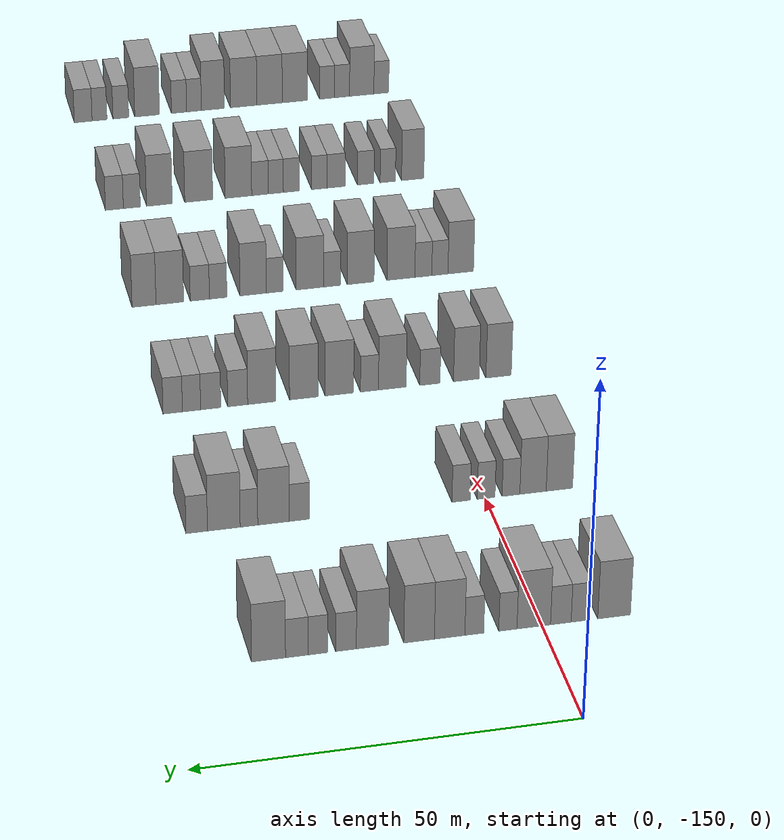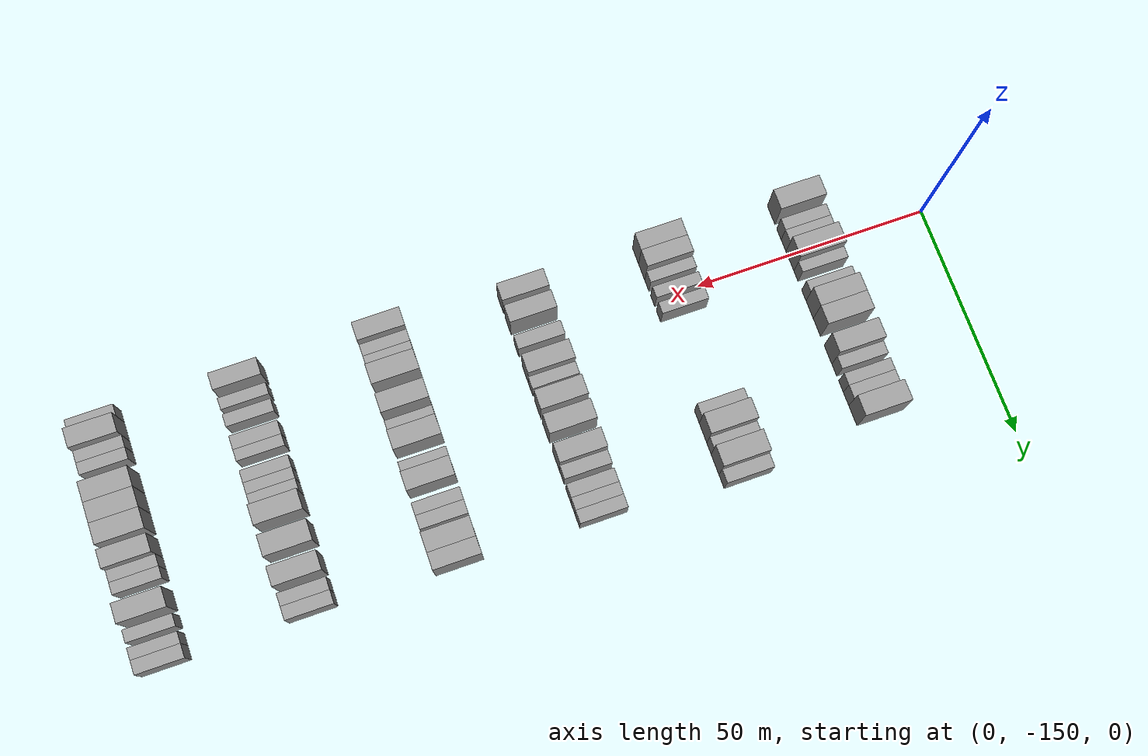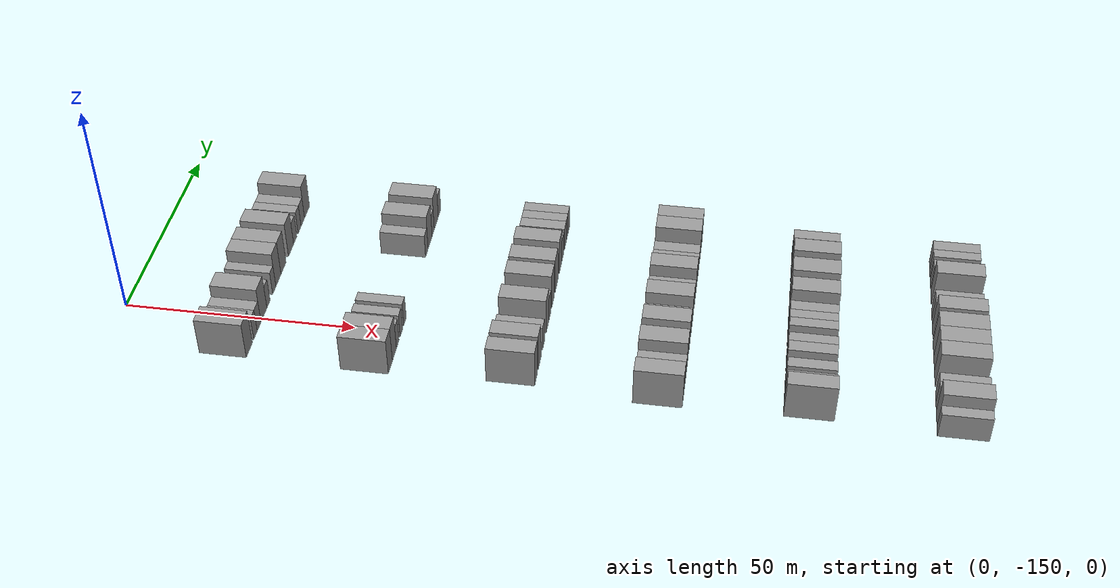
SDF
<sdf version="1.6">
 <world name="default">
  <model name="building_68">
   <static>1</static>
   <pose>25.0000 -159.6716 0 0.000000 0.000000 0.000000</pose>
   <link name="link">
    <pose>0 0 4.50 0 0 0</pose>
    <collision name="collision"><geometry><box><size>10.0000 4.3974 9.0000</size></box></geometry></collision>
    <visual name="visual">
     <cast_shadows>0</cast_shadows>
     <geometry><box><size>10.0000 4.3974 9.0000</size></box></geometry>
     <material>
      <script>
       <uri>model://grey_wall/materials/scripts</uri>
       <uri>model://grey_wall/materials/textures</uri>
       <name>vrc/grey_wall</name>
      </script>
     </material>
    </visual>
   </link>
  </model>
  <model name="building_69">
   <static>1</static>
   <pose>25.0000 -155.1851 0 0.000000 0.000000 0.000000</pose>
   <link name="link">
    <pose>0 0 3.00 0 0 0</pose>
    <collision name="collision"><geometry><box><size>10.0000 2.5757 6.0000</size></box></geometry></collision>
    <visual name="visual">
     <cast_shadows>0</cast_shadows>
     <geometry><box><size>10.0000 2.5757 6.0000</size></box></geometry>
     <material>
      <script>
       <uri>model://grey_wall/materials/scripts</uri>
       <uri>model://grey_wall/materials/textures</uri>
       <name>vrc/grey_wall</name>
      </script>
     </material>
    </visual>
   </link>
  </model>
  <model name="building_70">
   <static>1</static>
   <pose>25.0000 -152.5151 0 0.000000 0.000000 0.000000</pose>
   <link name="link">
    <pose>0 0 3.00 0 0 0</pose>
    <collision name="collision"><geometry><box><size>10.0000 2.7643 6.0000</size></box></geometry></collision>
    <visual name="visual">
     <cast_shadows>0</cast_shadows>
     <geometry><box><size>10.0000 2.7643 6.0000</size></box></geometry>
     <material>
      <script>
       <uri>model://grey_wall/materials/scripts</uri>
       <uri>model://grey_wall/materials/textures</uri>
       <name>vrc/grey_wall</name>
      </script>
     </material>
    </visual>
   </link>
  </model>
  <model name="building_71">
   <static>1</static>
   <pose>25.0000 -148.8898 0 0.000000 0.000000 0.000000</pose>
   <link name="link">
    <pose>0 0 4.50 0 0 0</pose>
    <collision name="collision"><geometry><box><size>10.0000 4.4863 9.0000</size></box></geometry></collision>
    <visual name="visual">
     <cast_shadows>0</cast_shadows>
     <geometry><box><size>10.0000 4.4863 9.0000</size></box></geometry>
     <material>
      <script>
       <uri>model://grey_wall/materials/scripts</uri>
       <uri>model://grey_wall/materials/textures</uri>
       <name>vrc/grey_wall</name>
      </script>
     </material>
    </visual>
   </link>
  </model>
  <model name="building_72">
   <static>1</static>
   <pose>25.0000 -145.4337 0 0.000000 0.000000 0.000000</pose>
   <link name="link">
    <pose>0 0 3.00 0 0 0</pose>
    <collision name="collision"><geometry><box><size>10.0000 2.4259 6.0000</size></box></geometry></collision>
    <visual name="visual">
     <cast_shadows>0</cast_shadows>
     <geometry><box><size>10.0000 2.4259 6.0000</size></box></geometry>
     <material>
      <script>
       <uri>model://grey_wall/materials/scripts</uri>
       <uri>model://grey_wall/materials/textures</uri>
       <name>vrc/grey_wall</name>
      </script>
     </material>
    </visual>
   </link>
  </model>
  <model name="building_73">
   <static>1</static>
   <pose>25.0000 -140.9664 0 0.000000 0.000000 0.000000</pose>
   <link name="link">
    <pose>0 0 3.00 0 0 0</pose>
    <collision name="collision"><geometry><box><size>10.0000 2.5087 6.0000</size></box></geometry></collision>
    <visual name="visual">
     <cast_shadows>0</cast_shadows>
     <geometry><box><size>10.0000 2.5087 6.0000</size></box></geometry>
     <material>
      <script>
       <uri>model://grey_wall/materials/scripts</uri>
       <uri>model://grey_wall/materials/textures</uri>
       <name>vrc/grey_wall</name>
      </script>
     </material>
    </visual>
   </link>
  </model>
  <model name="building_74">
   <static>1</static>
   <pose>25.0000 -137.6919 0 0.000000 0.000000 0.000000</pose>
   <link name="link">
    <pose>0 0 4.50 0 0 0</pose>
    <collision name="collision"><geometry><box><size>10.0000 4.0403 9.0000</size></box></geometry></collision>
    <visual name="visual">
     <cast_shadows>0</cast_shadows>
     <geometry><box><size>10.0000 4.0403 9.0000</size></box></geometry>
     <material>
      <script>
       <uri>model://grey_wall/materials/scripts</uri>
       <uri>model://grey_wall/materials/textures</uri>
       <name>vrc/grey_wall</name>
      </script>
     </material>
    </visual>
   </link>
  </model>
  <model name="building_75">
   <static>1</static>
   <pose>25.0000 -133.6516 0 0.000000 0.000000 0.000000</pose>
   <link name="link">
    <pose>0 0 4.50 0 0 0</pose>
    <collision name="collision"><geometry><box><size>10.0000 4.0403 9.0000</size></box></geometry></collision>
    <visual name="visual">
     <cast_shadows>0</cast_shadows>
     <geometry><box><size>10.0000 4.0403 9.0000</size></box></geometry>
     <material>
      <script>
       <uri>model://grey_wall/materials/scripts</uri>
       <uri>model://grey_wall/materials/textures</uri>
       <name>vrc/grey_wall</name>
      </script>
     </material>
    </visual>
   </link>
  </model>
  <model name="building_76">
   <static>1</static>
   <pose>25.0000 -127.5075 0 0.000000 0.000000 0.000000</pose>
   <link name="link">
    <pose>0 0 4.50 0 0 0</pose>
    <collision name="collision"><geometry><box><size>10.0000 4.2479 9.0000</size></box></geometry></collision>
    <visual name="visual">
     <cast_shadows>0</cast_shadows>
     <geometry><box><size>10.0000 4.2479 9.0000</size></box></geometry>
     <material>
      <script>
       <uri>model://grey_wall/materials/scripts</uri>
       <uri>model://grey_wall/materials/textures</uri>
       <name>vrc/grey_wall</name>
      </script>
     </material>
    </visual>
   </link>
  </model>
  <model name="building_77">
   <static>1</static>
   <pose>25.0000 -124.0210 0 0.000000 0.000000 0.000000</pose>
   <link name="link">
    <pose>0 0 3.00 0 0 0</pose>
    <collision name="collision"><geometry><box><size>10.0000 2.7253 6.0000</size></box></geometry></collision>
    <visual name="visual">
     <cast_shadows>0</cast_shadows>
     <geometry><box><size>10.0000 2.7253 6.0000</size></box></geometry>
     <material>
      <script>
       <uri>model://grey_wall/materials/scripts</uri>
       <uri>model://grey_wall/materials/textures</uri>
       <name>vrc/grey_wall</name>
      </script>
     </material>
    </visual>
   </link>
  </model>
  <model name="building_78">
   <static>1</static>
   <pose>25.0000 -120.3752 0 0.000000 0.000000 0.000000</pose>
   <link name="link">
    <pose>0 0 3.00 0 0 0</pose>
    <collision name="collision"><geometry><box><size>10.0000 2.5663 6.0000</size></box></geometry></collision>
    <visual name="visual">
     <cast_shadows>0</cast_shadows>
     <geometry><box><size>10.0000 2.5663 6.0000</size></box></geometry>
     <material>
      <script>
       <uri>model://grey_wall/materials/scripts</uri>
       <uri>model://grey_wall/materials/textures</uri>
       <name>vrc/grey_wall</name>
      </script>
     </material>
    </visual>
   </link>
  </model>
  <model name="building_79">
   <static>1</static>
   <pose>25.0000 -117.6062 0 0.000000 0.000000 0.000000</pose>
   <link name="link">
    <pose>0 0 3.00 0 0 0</pose>
    <collision name="collision"><geometry><box><size>10.0000 2.9716 6.0000</size></box></geometry></collision>
    <visual name="visual">
     <cast_shadows>0</cast_shadows>
     <geometry><box><size>10.0000 2.9716 6.0000</size></box></geometry>
     <material>
      <script>
       <uri>model://grey_wall/materials/scripts</uri>
       <uri>model://grey_wall/materials/textures</uri>
       <name>vrc/grey_wall</name>
      </script>
     </material>
    </visual>
   </link>
  </model>
  <model name="building_80">
   <static>1</static>
   <pose>25.0000 -113.9055 0 0.000000 0.000000 0.000000</pose>
   <link name="link">
    <pose>0 0 4.50 0 0 0</pose>
    <collision name="collision"><geometry><box><size>10.0000 4.4298 9.0000</size></box></geometry></collision>
    <visual name="visual">
     <cast_shadows>0</cast_shadows>
     <geometry><box><size>10.0000 4.4298 9.0000</size></box></geometry>
     <material>
      <script>
       <uri>model://grey_wall/materials/scripts</uri>
       <uri>model://grey_wall/materials/textures</uri>
       <name>vrc/grey_wall</name>
      </script>
     </material>
    </visual>
   </link>
  </model>
  <model name="building_297">
   <static>1</static>
   <pose>55.0000 -160.4701 0 0.000000 0.000000 0.000000</pose>
   <link name="link">
    <pose>0 0 4.50 0 0 0</pose>
    <collision name="collision"><geometry><box><size>10.0000 3.7425 9.0000</size></box></geometry></collision>
    <visual name="visual">
     <cast_shadows>0</cast_shadows>
     <geometry><box><size>10.0000 3.7425 9.0000</size></box></geometry>
     <material>
      <script>
       <uri>model://grey_wall/materials/scripts</uri>
       <uri>model://grey_wall/materials/textures</uri>
       <name>vrc/grey_wall</name>
      </script>
     </material>
    </visual>
   </link>
  </model>
  <model name="building_298">
   <static>1</static>
   <pose>55.0000 -156.7333 0 0.000000 0.000000 0.000000</pose>
   <link name="link">
    <pose>0 0 4.50 0 0 0</pose>
    <collision name="collision"><geometry><box><size>10.0000 3.7312 9.0000</size></box></geometry></collision>
    <visual name="visual">
     <cast_shadows>0</cast_shadows>
     <geometry><box><size>10.0000 3.7312 9.0000</size></box></geometry>
     <material>
      <script>
       <uri>model://grey_wall/materials/scripts</uri>
       <uri>model://grey_wall/materials/textures</uri>
       <name>vrc/grey_wall</name>
      </script>
     </material>
    </visual>
   </link>
  </model>
  <model name="building_299">
   <static>1</static>
   <pose>55.0000 -153.6113 0 0.000000 0.000000 0.000000</pose>
   <link name="link">
    <pose>0 0 3.00 0 0 0</pose>
    <collision name="collision"><geometry><box><size>10.0000 2.5127 6.0000</size></box></geometry></collision>
    <visual name="visual">
     <cast_shadows>0</cast_shadows>
     <geometry><box><size>10.0000 2.5127 6.0000</size></box></geometry>
     <material>
      <script>
       <uri>model://grey_wall/materials/scripts</uri>
       <uri>model://grey_wall/materials/textures</uri>
       <name>vrc/grey_wall</name>
      </script>
     </material>
    </visual>
   </link>
  </model>
  <model name="building_300">
   <static>1</static>
   <pose>55.0000 -150.1097 0 0.000000 0.000000 0.000000</pose>
   <link name="link">
    <pose>0 0 3.00 0 0 0</pose>
    <collision name="collision"><geometry><box><size>10.0000 2.4907 6.0000</size></box></geometry></collision>
    <visual name="visual">
     <cast_shadows>0</cast_shadows>
     <geometry><box><size>10.0000 2.4907 6.0000</size></box></geometry>
     <material>
      <script>
       <uri>model://grey_wall/materials/scripts</uri>
       <uri>model://grey_wall/materials/textures</uri>
       <name>vrc/grey_wall</name>
      </script>
     </material>
    </visual>
   </link>
  </model>
  <model name="building_301">
   <static>1</static>
   <pose>55.0000 -146.5846 0 0.000000 0.000000 0.000000</pose>
   <link name="link">
    <pose>0 0 3.00 0 0 0</pose>
    <collision name="collision"><geometry><box><size>10.0000 2.5594 6.0000</size></box></geometry></collision>
    <visual name="visual">
     <cast_shadows>0</cast_shadows>
     <geometry><box><size>10.0000 2.5594 6.0000</size></box></geometry>
     <material>
      <script>
       <uri>model://grey_wall/materials/scripts</uri>
       <uri>model://grey_wall/materials/textures</uri>
       <name>vrc/grey_wall</name>
      </script>
     </material>
    </visual>
   </link>
  </model>
  <model name="building_302">
   <static>1</static>
   <pose>55.0000 -124.0738 0 0.000000 0.000000 0.000000</pose>
   <link name="link">
    <pose>0 0 3.00 0 0 0</pose>
    <collision name="collision"><geometry><box><size>10.0000 2.8207 6.0000</size></box></geometry></collision>
    <visual name="visual">
     <cast_shadows>0</cast_shadows>
     <geometry><box><size>10.0000 2.8207 6.0000</size></box></geometry>
     <material>
      <script>
       <uri>model://grey_wall/materials/scripts</uri>
       <uri>model://grey_wall/materials/textures</uri>
       <name>vrc/grey_wall</name>
      </script>
     </material>
    </visual>
   </link>
  </model>
  <model name="building_303">
   <static>1</static>
   <pose>55.0000 -120.4865 0 0.000000 0.000000 0.000000</pose>
   <link name="link">
    <pose>0 0 4.50 0 0 0</pose>
    <collision name="collision"><geometry><box><size>10.0000 4.3540 9.0000</size></box></geometry></collision>
    <visual name="visual">
     <cast_shadows>0</cast_shadows>
     <geometry><box><size>10.0000 4.3540 9.0000</size></box></geometry>
     <material>
      <script>
       <uri>model://grey_wall/materials/scripts</uri>
       <uri>model://grey_wall/materials/textures</uri>
       <name>vrc/grey_wall</name>
      </script>
     </material>
    </visual>
   </link>
  </model>
  <model name="building_304">
   <static>1</static>
   <pose>55.0000 -117.0992 0 0.000000 0.000000 0.000000</pose>
   <link name="link">
    <pose>0 0 3.00 0 0 0</pose>
    <collision name="collision"><geometry><box><size>10.0000 2.4206 6.0000</size></box></geometry></collision>
    <visual name="visual">
     <cast_shadows>0</cast_shadows>
     <geometry><box><size>10.0000 2.4206 6.0000</size></box></geometry>
     <material>
      <script>
       <uri>model://grey_wall/materials/scripts</uri>
       <uri>model://grey_wall/materials/textures</uri>
       <name>vrc/grey_wall</name>
      </script>
     </material>
    </visual>
   </link>
  </model>
  <model name="building_305">
   <static>1</static>
   <pose>55.0000 -113.6443 0 0.000000 0.000000 0.000000</pose>
   <link name="link">
    <pose>0 0 4.50 0 0 0</pose>
    <collision name="collision"><geometry><box><size>10.0000 4.4891 9.0000</size></box></geometry></collision>
    <visual name="visual">
     <cast_shadows>0</cast_shadows>
     <geometry><box><size>10.0000 4.4891 9.0000</size></box></geometry>
     <material>
      <script>
       <uri>model://grey_wall/materials/scripts</uri>
       <uri>model://grey_wall/materials/textures</uri>
       <name>vrc/grey_wall</name>
      </script>
     </material>
    </visual>
   </link>
  </model>
  <model name="building_306">
   <static>1</static>
   <pose>55.0000 -109.9319 0 0.000000 0.000000 0.000000</pose>
   <link name="link">
    <pose>0 0 3.00 0 0 0</pose>
    <collision name="collision"><geometry><box><size>10.0000 2.9357 6.0000</size></box></geometry></collision>
    <visual name="visual">
     <cast_shadows>0</cast_shadows>
     <geometry><box><size>10.0000 2.9357 6.0000</size></box></geometry>
     <material>
      <script>
       <uri>model://grey_wall/materials/scripts</uri>
       <uri>model://grey_wall/materials/textures</uri>
       <name>vrc/grey_wall</name>
      </script>
     </material>
    </visual>
   </link>
  </model>
  <model name="building_530">
   <static>1</static>
   <pose>85.0000 -159.5327 0 0.000000 0.000000 0.000000</pose>
   <link name="link">
    <pose>0 0 4.50 0 0 0</pose>
    <collision name="collision"><geometry><box><size>10.0000 3.7682 9.0000</size></box></geometry></collision>
    <visual name="visual">
     <cast_shadows>0</cast_shadows>
     <geometry><box><size>10.0000 3.7682 9.0000</size></box></geometry>
     <material>
      <script>
       <uri>model://grey_wall/materials/scripts</uri>
       <uri>model://grey_wall/materials/textures</uri>
       <name>vrc/grey_wall</name>
      </script>
     </material>
    </visual>
   </link>
  </model>
  <model name="building_531">
   <static>1</static>
   <pose>85.0000 -154.7418 0 0.000000 0.000000 0.000000</pose>
   <link name="link">
    <pose>0 0 4.50 0 0 0</pose>
    <collision name="collision"><geometry><box><size>10.0000 3.8137 9.0000</size></box></geometry></collision>
    <visual name="visual">
     <cast_shadows>0</cast_shadows>
     <geometry><box><size>10.0000 3.8137 9.0000</size></box></geometry>
     <material>
      <script>
       <uri>model://grey_wall/materials/scripts</uri>
       <uri>model://grey_wall/materials/textures</uri>
       <name>vrc/grey_wall</name>
      </script>
     </material>
    </visual>
   </link>
  </model>
  <model name="building_532">
   <static>1</static>
   <pose>85.0000 -149.3360 0 0.000000 0.000000 0.000000</pose>
   <link name="link">
    <pose>0 0 3.00 0 0 0</pose>
    <collision name="collision"><geometry><box><size>10.0000 2.9979 6.0000</size></box></geometry></collision>
    <visual name="visual">
     <cast_shadows>0</cast_shadows>
     <geometry><box><size>10.0000 2.9979 6.0000</size></box></geometry>
     <material>
      <script>
       <uri>model://grey_wall/materials/scripts</uri>
       <uri>model://grey_wall/materials/textures</uri>
       <name>vrc/grey_wall</name>
      </script>
     </material>
    </visual>
   </link>
  </model>
  <model name="building_533">
   <static>1</static>
   <pose>85.0000 -143.7953 0 0.000000 0.000000 0.000000</pose>
   <link name="link">
    <pose>0 0 4.50 0 0 0</pose>
    <collision name="collision"><geometry><box><size>10.0000 4.0837 9.0000</size></box></geometry></collision>
    <visual name="visual">
     <cast_shadows>0</cast_shadows>
     <geometry><box><size>10.0000 4.0837 9.0000</size></box></geometry>
     <material>
      <script>
       <uri>model://grey_wall/materials/scripts</uri>
       <uri>model://grey_wall/materials/textures</uri>
       <name>vrc/grey_wall</name>
      </script>
     </material>
    </visual>
   </link>
  </model>
  <model name="building_534">
   <static>1</static>
   <pose>85.0000 -140.4273 0 0.000000 0.000000 0.000000</pose>
   <link name="link">
    <pose>0 0 3.00 0 0 0</pose>
    <collision name="collision"><geometry><box><size>10.0000 2.6522 6.0000</size></box></geometry></collision>
    <visual name="visual">
     <cast_shadows>0</cast_shadows>
     <geometry><box><size>10.0000 2.6522 6.0000</size></box></geometry>
     <material>
      <script>
       <uri>model://grey_wall/materials/scripts</uri>
       <uri>model://grey_wall/materials/textures</uri>
       <name>vrc/grey_wall</name>
      </script>
     </material>
    </visual>
   </link>
  </model>
  <model name="building_535">
   <static>1</static>
   <pose>85.0000 -136.0098 0 0.000000 0.000000 0.000000</pose>
   <link name="link">
    <pose>0 0 4.50 0 0 0</pose>
    <collision name="collision"><geometry><box><size>10.0000 4.1829 9.0000</size></box></geometry></collision>
    <visual name="visual">
     <cast_shadows>0</cast_shadows>
     <geometry><box><size>10.0000 4.1829 9.0000</size></box></geometry>
     <material>
      <script>
       <uri>model://grey_wall/materials/scripts</uri>
       <uri>model://grey_wall/materials/textures</uri>
       <name>vrc/grey_wall</name>
      </script>
     </material>
    </visual>
   </link>
  </model>
  <model name="building_536">
   <static>1</static>
   <pose>85.0000 -130.8243 0 0.000000 0.000000 0.000000</pose>
   <link name="link">
    <pose>0 0 4.50 0 0 0</pose>
    <collision name="collision"><geometry><box><size>10.0000 4.1880 9.0000</size></box></geometry></collision>
    <visual name="visual">
     <cast_shadows>0</cast_shadows>
     <geometry><box><size>10.0000 4.1880 9.0000</size></box></geometry>
     <material>
      <script>
       <uri>model://grey_wall/materials/scripts</uri>
       <uri>model://grey_wall/materials/textures</uri>
       <name>vrc/grey_wall</name>
      </script>
     </material>
    </visual>
   </link>
  </model>
  <model name="building_537">
   <static>1</static>
   <pose>85.0000 -124.6805 0 0.000000 0.000000 0.000000</pose>
   <link name="link">
    <pose>0 0 4.50 0 0 0</pose>
    <collision name="collision"><geometry><box><size>10.0000 4.0997 9.0000</size></box></geometry></collision>
    <visual name="visual">
     <cast_shadows>0</cast_shadows>
     <geometry><box><size>10.0000 4.0997 9.0000</size></box></geometry>
     <material>
      <script>
       <uri>model://grey_wall/materials/scripts</uri>
       <uri>model://grey_wall/materials/textures</uri>
       <name>vrc/grey_wall</name>
      </script>
     </material>
    </visual>
   </link>
  </model>
  <model name="building_538">
   <static>1</static>
   <pose>85.0000 -121.1832 0 0.000000 0.000000 0.000000</pose>
   <link name="link">
    <pose>0 0 3.00 0 0 0</pose>
    <collision name="collision"><geometry><box><size>10.0000 2.8948 6.0000</size></box></geometry></collision>
    <visual name="visual">
     <cast_shadows>0</cast_shadows>
     <geometry><box><size>10.0000 2.8948 6.0000</size></box></geometry>
     <material>
      <script>
       <uri>model://grey_wall/materials/scripts</uri>
       <uri>model://grey_wall/materials/textures</uri>
       <name>vrc/grey_wall</name>
      </script>
     </material>
    </visual>
   </link>
  </model>
  <model name="building_539">
   <static>1</static>
   <pose>85.0000 -117.2781 0 0.000000 0.000000 0.000000</pose>
   <link name="link">
    <pose>0 0 3.00 0 0 0</pose>
    <collision name="collision"><geometry><box><size>10.0000 2.9156 6.0000</size></box></geometry></collision>
    <visual name="visual">
     <cast_shadows>0</cast_shadows>
     <geometry><box><size>10.0000 2.9156 6.0000</size></box></geometry>
     <material>
      <script>
       <uri>model://grey_wall/materials/scripts</uri>
       <uri>model://grey_wall/materials/textures</uri>
       <name>vrc/grey_wall</name>
      </script>
     </material>
    </visual>
   </link>
  </model>
  <model name="building_540">
   <static>1</static>
   <pose>85.0000 -114.5073 0 0.000000 0.000000 0.000000</pose>
   <link name="link">
    <pose>0 0 3.00 0 0 0</pose>
    <collision name="collision"><geometry><box><size>10.0000 2.6259 6.0000</size></box></geometry></collision>
    <visual name="visual">
     <cast_shadows>0</cast_shadows>
     <geometry><box><size>10.0000 2.6259 6.0000</size></box></geometry>
     <material>
      <script>
       <uri>model://grey_wall/materials/scripts</uri>
       <uri>model://grey_wall/materials/textures</uri>
       <name>vrc/grey_wall</name>
      </script>
     </material>
    </visual>
   </link>
  </model>
  <model name="building_541">
   <static>1</static>
   <pose>85.0000 -111.7978 0 0.000000 0.000000 0.000000</pose>
   <link name="link">
    <pose>0 0 3.00 0 0 0</pose>
    <collision name="collision"><geometry><box><size>10.0000 2.7933 6.0000</size></box></geometry></collision>
    <visual name="visual">
     <cast_shadows>0</cast_shadows>
     <geometry><box><size>10.0000 2.7933 6.0000</size></box></geometry>
     <material>
      <script>
       <uri>model://grey_wall/materials/scripts</uri>
       <uri>model://grey_wall/materials/textures</uri>
       <name>vrc/grey_wall</name>
      </script>
     </material>
    </visual>
   </link>
  </model>
  <model name="building_744">
   <static>1</static>
   <pose>115.0000 -161.2777 0 0.000000 0.000000 0.000000</pose>
   <link name="link">
    <pose>0 0 4.50 0 0 0</pose>
    <collision name="collision"><geometry><box><size>10.0000 3.9788 9.0000</size></box></geometry></collision>
    <visual name="visual">
     <cast_shadows>0</cast_shadows>
     <geometry><box><size>10.0000 3.9788 9.0000</size></box></geometry>
     <material>
      <script>
       <uri>model://grey_wall/materials/scripts</uri>
       <uri>model://grey_wall/materials/textures</uri>
       <name>vrc/grey_wall</name>
      </script>
     </material>
    </visual>
   </link>
  </model>
  <model name="building_745">
   <static>1</static>
   <pose>115.0000 -158.0272 0 0.000000 0.000000 0.000000</pose>
   <link name="link">
    <pose>0 0 3.00 0 0 0</pose>
    <collision name="collision"><geometry><box><size>10.0000 2.5222 6.0000</size></box></geometry></collision>
    <visual name="visual">
     <cast_shadows>0</cast_shadows>
     <geometry><box><size>10.0000 2.5222 6.0000</size></box></geometry>
     <material>
      <script>
       <uri>model://grey_wall/materials/scripts</uri>
       <uri>model://grey_wall/materials/textures</uri>
       <name>vrc/grey_wall</name>
      </script>
     </material>
    </visual>
   </link>
  </model>
  <model name="building_746">
   <static>1</static>
   <pose>115.0000 -155.4476 0 0.000000 0.000000 0.000000</pose>
   <link name="link">
    <pose>0 0 3.00 0 0 0</pose>
    <collision name="collision"><geometry><box><size>10.0000 2.6370 6.0000</size></box></geometry></collision>
    <visual name="visual">
     <cast_shadows>0</cast_shadows>
     <geometry><box><size>10.0000 2.6370 6.0000</size></box></geometry>
     <material>
      <script>
       <uri>model://grey_wall/materials/scripts</uri>
       <uri>model://grey_wall/materials/textures</uri>
       <name>vrc/grey_wall</name>
      </script>
     </material>
    </visual>
   </link>
  </model>
  <model name="building_747">
   <static>1</static>
   <pose>115.0000 -151.9599 0 0.000000 0.000000 0.000000</pose>
   <link name="link">
    <pose>0 0 4.50 0 0 0</pose>
    <collision name="collision"><geometry><box><size>10.0000 4.3385 9.0000</size></box></geometry></collision>
    <visual name="visual">
     <cast_shadows>0</cast_shadows>
     <geometry><box><size>10.0000 4.3385 9.0000</size></box></geometry>
     <material>
      <script>
       <uri>model://grey_wall/materials/scripts</uri>
       <uri>model://grey_wall/materials/textures</uri>
       <name>vrc/grey_wall</name>
      </script>
     </material>
    </visual>
   </link>
  </model>
  <model name="building_748">
   <static>1</static>
   <pose>115.0000 -145.7211 0 0.000000 0.000000 0.000000</pose>
   <link name="link">
    <pose>0 0 4.50 0 0 0</pose>
    <collision name="collision"><geometry><box><size>10.0000 4.1390 9.0000</size></box></geometry></collision>
    <visual name="visual">
     <cast_shadows>0</cast_shadows>
     <geometry><box><size>10.0000 4.1390 9.0000</size></box></geometry>
     <material>
      <script>
       <uri>model://grey_wall/materials/scripts</uri>
       <uri>model://grey_wall/materials/textures</uri>
       <name>vrc/grey_wall</name>
      </script>
     </material>
    </visual>
   </link>
  </model>
  <model name="building_749">
   <static>1</static>
   <pose>115.0000 -141.3209 0 0.000000 0.000000 0.000000</pose>
   <link name="link">
    <pose>0 0 3.00 0 0 0</pose>
    <collision name="collision"><geometry><box><size>10.0000 2.6614 6.0000</size></box></geometry></collision>
    <visual name="visual">
     <cast_shadows>0</cast_shadows>
     <geometry><box><size>10.0000 2.6614 6.0000</size></box></geometry>
     <material>
      <script>
       <uri>model://grey_wall/materials/scripts</uri>
       <uri>model://grey_wall/materials/textures</uri>
       <name>vrc/grey_wall</name>
      </script>
     </material>
    </visual>
   </link>
  </model>
  <model name="building_750">
   <static>1</static>
   <pose>115.0000 -137.8860 0 0.000000 0.000000 0.000000</pose>
   <link name="link">
    <pose>0 0 4.50 0 0 0</pose>
    <collision name="collision"><geometry><box><size>10.0000 4.2084 9.0000</size></box></geometry></collision>
    <visual name="visual">
     <cast_shadows>0</cast_shadows>
     <geometry><box><size>10.0000 4.2084 9.0000</size></box></geometry>
     <material>
      <script>
       <uri>model://grey_wall/materials/scripts</uri>
       <uri>model://grey_wall/materials/textures</uri>
       <name>vrc/grey_wall</name>
      </script>
     </material>
    </visual>
   </link>
  </model>
  <model name="building_751">
   <static>1</static>
   <pose>115.0000 -132.4882 0 0.000000 0.000000 0.000000</pose>
   <link name="link">
    <pose>0 0 3.00 0 0 0</pose>
    <collision name="collision"><geometry><box><size>10.0000 2.5872 6.0000</size></box></geometry></collision>
    <visual name="visual">
     <cast_shadows>0</cast_shadows>
     <geometry><box><size>10.0000 2.5872 6.0000</size></box></geometry>
     <material>
      <script>
       <uri>model://grey_wall/materials/scripts</uri>
       <uri>model://grey_wall/materials/textures</uri>
       <name>vrc/grey_wall</name>
      </script>
     </material>
    </visual>
   </link>
  </model>
  <model name="building_752">
   <static>1</static>
   <pose>115.0000 -129.1830 0 0.000000 0.000000 0.000000</pose>
   <link name="link">
    <pose>0 0 4.50 0 0 0</pose>
    <collision name="collision"><geometry><box><size>10.0000 4.0232 9.0000</size></box></geometry></collision>
    <visual name="visual">
     <cast_shadows>0</cast_shadows>
     <geometry><box><size>10.0000 4.0232 9.0000</size></box></geometry>
     <material>
      <script>
       <uri>model://grey_wall/materials/scripts</uri>
       <uri>model://grey_wall/materials/textures</uri>
       <name>vrc/grey_wall</name>
      </script>
     </material>
    </visual>
   </link>
  </model>
  <model name="building_753">
   <static>1</static>
   <pose>115.0000 -123.8432 0 0.000000 0.000000 0.000000</pose>
   <link name="link">
    <pose>0 0 3.00 0 0 0</pose>
    <collision name="collision"><geometry><box><size>10.0000 2.6564 6.0000</size></box></geometry></collision>
    <visual name="visual">
     <cast_shadows>0</cast_shadows>
     <geometry><box><size>10.0000 2.6564 6.0000</size></box></geometry>
     <material>
      <script>
       <uri>model://grey_wall/materials/scripts</uri>
       <uri>model://grey_wall/materials/textures</uri>
       <name>vrc/grey_wall</name>
      </script>
     </material>
    </visual>
   </link>
  </model>
  <model name="building_754">
   <static>1</static>
   <pose>115.0000 -121.0573 0 0.000000 0.000000 0.000000</pose>
   <link name="link">
    <pose>0 0 3.00 0 0 0</pose>
    <collision name="collision"><geometry><box><size>10.0000 2.9155 6.0000</size></box></geometry></collision>
    <visual name="visual">
     <cast_shadows>0</cast_shadows>
     <geometry><box><size>10.0000 2.9155 6.0000</size></box></geometry>
     <material>
      <script>
       <uri>model://grey_wall/materials/scripts</uri>
       <uri>model://grey_wall/materials/textures</uri>
       <name>vrc/grey_wall</name>
      </script>
     </material>
    </visual>
   </link>
  </model>
  <model name="building_755">
   <static>1</static>
   <pose>115.0000 -116.5032 0 0.000000 0.000000 0.000000</pose>
   <link name="link">
    <pose>0 0 4.50 0 0 0</pose>
    <collision name="collision"><geometry><box><size>10.0000 4.1927 9.0000</size></box></geometry></collision>
    <visual name="visual">
     <cast_shadows>0</cast_shadows>
     <geometry><box><size>10.0000 4.1927 9.0000</size></box></geometry>
     <material>
      <script>
       <uri>model://grey_wall/materials/scripts</uri>
       <uri>model://grey_wall/materials/textures</uri>
       <name>vrc/grey_wall</name>
      </script>
     </material>
    </visual>
   </link>
  </model>
  <model name="building_756">
   <static>1</static>
   <pose>115.0000 -112.5969 0 0.000000 0.000000 0.000000</pose>
   <link name="link">
    <pose>0 0 4.50 0 0 0</pose>
    <collision name="collision"><geometry><box><size>10.0000 3.6198 9.0000</size></box></geometry></collision>
    <visual name="visual">
     <cast_shadows>0</cast_shadows>
     <geometry><box><size>10.0000 3.6198 9.0000</size></box></geometry>
     <material>
      <script>
       <uri>model://grey_wall/materials/scripts</uri>
       <uri>model://grey_wall/materials/textures</uri>
       <name>vrc/grey_wall</name>
      </script>
     </material>
    </visual>
   </link>
  </model>
  <model name="building_966">
   <static>1</static>
   <pose>145.0000 -160.7909 0 0.000000 0.000000 0.000000</pose>
   <link name="link">
    <pose>0 0 4.50 0 0 0</pose>
    <collision name="collision"><geometry><box><size>10.0000 3.6329 9.0000</size></box></geometry></collision>
    <visual name="visual">
     <cast_shadows>0</cast_shadows>
     <geometry><box><size>10.0000 3.6329 9.0000</size></box></geometry>
     <material>
      <script>
       <uri>model://grey_wall/materials/scripts</uri>
       <uri>model://grey_wall/materials/textures</uri>
       <name>vrc/grey_wall</name>
      </script>
     </material>
    </visual>
   </link>
  </model>
  <model name="building_967">
   <static>1</static>
   <pose>145.0000 -156.7232 0 0.000000 0.000000 0.000000</pose>
   <link name="link">
    <pose>0 0 3.00 0 0 0</pose>
    <collision name="collision"><geometry><box><size>10.0000 2.5025 6.0000</size></box></geometry></collision>
    <visual name="visual">
     <cast_shadows>0</cast_shadows>
     <geometry><box><size>10.0000 2.5025 6.0000</size></box></geometry>
     <material>
      <script>
       <uri>model://grey_wall/materials/scripts</uri>
       <uri>model://grey_wall/materials/textures</uri>
       <name>vrc/grey_wall</name>
      </script>
     </material>
    </visual>
   </link>
  </model>
  <model name="building_968">
   <static>1</static>
   <pose>145.0000 -153.1299 0 0.000000 0.000000 0.000000</pose>
   <link name="link">
    <pose>0 0 3.00 0 0 0</pose>
    <collision name="collision"><geometry><box><size>10.0000 2.6841 6.0000</size></box></geometry></collision>
    <visual name="visual">
     <cast_shadows>0</cast_shadows>
     <geometry><box><size>10.0000 2.6841 6.0000</size></box></geometry>
     <material>
      <script>
       <uri>model://grey_wall/materials/scripts</uri>
       <uri>model://grey_wall/materials/textures</uri>
       <name>vrc/grey_wall</name>
      </script>
     </material>
    </visual>
   </link>
  </model>
  <model name="building_969">
   <static>1</static>
   <pose>145.0000 -148.3282 0 0.000000 0.000000 0.000000</pose>
   <link name="link">
    <pose>0 0 3.00 0 0 0</pose>
    <collision name="collision"><geometry><box><size>10.0000 2.9192 6.0000</size></box></geometry></collision>
    <visual name="visual">
     <cast_shadows>0</cast_shadows>
     <geometry><box><size>10.0000 2.9192 6.0000</size></box></geometry>
     <material>
      <script>
       <uri>model://grey_wall/materials/scripts</uri>
       <uri>model://grey_wall/materials/textures</uri>
       <name>vrc/grey_wall</name>
      </script>
     </material>
    </visual>
   </link>
  </model>
  <model name="building_970">
   <static>1</static>
   <pose>145.0000 -145.6302 0 0.000000 0.000000 0.000000</pose>
   <link name="link">
    <pose>0 0 3.00 0 0 0</pose>
    <collision name="collision"><geometry><box><size>10.0000 2.4768 6.0000</size></box></geometry></collision>
    <visual name="visual">
     <cast_shadows>0</cast_shadows>
     <geometry><box><size>10.0000 2.4768 6.0000</size></box></geometry>
     <material>
      <script>
       <uri>model://grey_wall/materials/scripts</uri>
       <uri>model://grey_wall/materials/textures</uri>
       <name>vrc/grey_wall</name>
      </script>
     </material>
    </visual>
   </link>
  </model>
  <model name="building_971">
   <static>1</static>
   <pose>145.0000 -141.1068 0 0.000000 0.000000 0.000000</pose>
   <link name="link">
    <pose>0 0 3.00 0 0 0</pose>
    <collision name="collision"><geometry><box><size>10.0000 2.5699 6.0000</size></box></geometry></collision>
    <visual name="visual">
     <cast_shadows>0</cast_shadows>
     <geometry><box><size>10.0000 2.5699 6.0000</size></box></geometry>
     <material>
      <script>
       <uri>model://grey_wall/materials/scripts</uri>
       <uri>model://grey_wall/materials/textures</uri>
       <name>vrc/grey_wall</name>
      </script>
     </material>
    </visual>
   </link>
  </model>
  <model name="building_972">
   <static>1</static>
   <pose>145.0000 -138.6177 0 0.000000 0.000000 0.000000</pose>
   <link name="link">
    <pose>0 0 3.00 0 0 0</pose>
    <collision name="collision"><geometry><box><size>10.0000 2.4083 6.0000</size></box></geometry></collision>
    <visual name="visual">
     <cast_shadows>0</cast_shadows>
     <geometry><box><size>10.0000 2.4083 6.0000</size></box></geometry>
     <material>
      <script>
       <uri>model://grey_wall/materials/scripts</uri>
       <uri>model://grey_wall/materials/textures</uri>
       <name>vrc/grey_wall</name>
      </script>
     </material>
    </visual>
   </link>
  </model>
  <model name="building_973">
   <static>1</static>
   <pose>145.0000 -136.0646 0 0.000000 0.000000 0.000000</pose>
   <link name="link">
    <pose>0 0 3.00 0 0 0</pose>
    <collision name="collision"><geometry><box><size>10.0000 2.6978 6.0000</size></box></geometry></collision>
    <visual name="visual">
     <cast_shadows>0</cast_shadows>
     <geometry><box><size>10.0000 2.6978 6.0000</size></box></geometry>
     <material>
      <script>
       <uri>model://grey_wall/materials/scripts</uri>
       <uri>model://grey_wall/materials/textures</uri>
       <name>vrc/grey_wall</name>
      </script>
     </material>
    </visual>
   </link>
  </model>
  <model name="building_974">
   <static>1</static>
   <pose>145.0000 -132.5908 0 0.000000 0.000000 0.000000</pose>
   <link name="link">
    <pose>0 0 4.50 0 0 0</pose>
    <collision name="collision"><geometry><box><size>10.0000 4.2499 9.0000</size></box></geometry></collision>
    <visual name="visual">
     <cast_shadows>0</cast_shadows>
     <geometry><box><size>10.0000 4.2499 9.0000</size></box></geometry>
     <material>
      <script>
       <uri>model://grey_wall/materials/scripts</uri>
       <uri>model://grey_wall/materials/textures</uri>
       <name>vrc/grey_wall</name>
      </script>
     </material>
    </visual>
   </link>
  </model>
  <model name="building_975">
   <static>1</static>
   <pose>145.0000 -126.2356 0 0.000000 0.000000 0.000000</pose>
   <link name="link">
    <pose>0 0 4.50 0 0 0</pose>
    <collision name="collision"><geometry><box><size>10.0000 4.4606 9.0000</size></box></geometry></collision>
    <visual name="visual">
     <cast_shadows>0</cast_shadows>
     <geometry><box><size>10.0000 4.4606 9.0000</size></box></geometry>
     <material>
      <script>
       <uri>model://grey_wall/materials/scripts</uri>
       <uri>model://grey_wall/materials/textures</uri>
       <name>vrc/grey_wall</name>
      </script>
     </material>
    </visual>
   </link>
  </model>
  <model name="building_976">
   <static>1</static>
   <pose>145.0000 -119.9651 0 0.000000 0.000000 0.000000</pose>
   <link name="link">
    <pose>0 0 4.50 0 0 0</pose>
    <collision name="collision"><geometry><box><size>10.0000 4.0803 9.0000</size></box></geometry></collision>
    <visual name="visual">
     <cast_shadows>0</cast_shadows>
     <geometry><box><size>10.0000 4.0803 9.0000</size></box></geometry>
     <material>
      <script>
       <uri>model://grey_wall/materials/scripts</uri>
       <uri>model://grey_wall/materials/textures</uri>
       <name>vrc/grey_wall</name>
      </script>
     </material>
    </visual>
   </link>
  </model>
  <model name="building_977">
   <static>1</static>
   <pose>145.0000 -115.5844 0 0.000000 0.000000 0.000000</pose>
   <link name="link">
    <pose>0 0 3.00 0 0 0</pose>
    <collision name="collision"><geometry><box><size>10.0000 2.6810 6.0000</size></box></geometry></collision>
    <visual name="visual">
     <cast_shadows>0</cast_shadows>
     <geometry><box><size>10.0000 2.6810 6.0000</size></box></geometry>
     <material>
      <script>
       <uri>model://grey_wall/materials/scripts</uri>
       <uri>model://grey_wall/materials/textures</uri>
       <name>vrc/grey_wall</name>
      </script>
     </material>
    </visual>
   </link>
  </model>
  <model name="building_978">
   <static>1</static>
   <pose>145.0000 -112.8252 0 0.000000 0.000000 0.000000</pose>
   <link name="link">
    <pose>0 0 3.00 0 0 0</pose>
    <collision name="collision"><geometry><box><size>10.0000 2.8375 6.0000</size></box></geometry></collision>
    <visual name="visual">
     <cast_shadows>0</cast_shadows>
     <geometry><box><size>10.0000 2.8375 6.0000</size></box></geometry>
     <material>
      <script>
       <uri>model://grey_wall/materials/scripts</uri>
       <uri>model://grey_wall/materials/textures</uri>
       <name>vrc/grey_wall</name>
      </script>
     </material>
    </visual>
   </link>
  </model>
  <model name="building_1196">
   <static>1</static>
   <pose>175.0000 -162.4232 0 0.000000 0.000000 0.000000</pose>
   <link name="link">
    <pose>0 0 3.00 0 0 0</pose>
    <collision name="collision"><geometry><box><size>10.0000 2.5281 6.0000</size></box></geometry></collision>
    <visual name="visual">
     <cast_shadows>0</cast_shadows>
     <geometry><box><size>10.0000 2.5281 6.0000</size></box></geometry>
     <material>
      <script>
       <uri>model://grey_wall/materials/scripts</uri>
       <uri>model://grey_wall/materials/textures</uri>
       <name>vrc/grey_wall</name>
      </script>
     </material>
    </visual>
   </link>
  </model>
  <model name="building_1197">
   <static>1</static>
   <pose>175.0000 -159.0895 0 0.000000 0.000000 0.000000</pose>
   <link name="link">
    <pose>0 0 4.50 0 0 0</pose>
    <collision name="collision"><geometry><box><size>10.0000 4.1393 9.0000</size></box></geometry></collision>
    <visual name="visual">
     <cast_shadows>0</cast_shadows>
     <geometry><box><size>10.0000 4.1393 9.0000</size></box></geometry>
     <material>
      <script>
       <uri>model://grey_wall/materials/scripts</uri>
       <uri>model://grey_wall/materials/textures</uri>
       <name>vrc/grey_wall</name>
      </script>
     </material>
    </visual>
   </link>
  </model>
  <model name="building_1198">
   <static>1</static>
   <pose>175.0000 -155.7549 0 0.000000 0.000000 0.000000</pose>
   <link name="link">
    <pose>0 0 3.00 0 0 0</pose>
    <collision name="collision"><geometry><box><size>10.0000 2.5298 6.0000</size></box></geometry></collision>
    <visual name="visual">
     <cast_shadows>0</cast_shadows>
     <geometry><box><size>10.0000 2.5298 6.0000</size></box></geometry>
     <material>
      <script>
       <uri>model://grey_wall/materials/scripts</uri>
       <uri>model://grey_wall/materials/textures</uri>
       <name>vrc/grey_wall</name>
      </script>
     </material>
    </visual>
   </link>
  </model>
  <model name="building_1199">
   <static>1</static>
   <pose>175.0000 -153.2077 0 0.000000 0.000000 0.000000</pose>
   <link name="link">
    <pose>0 0 3.00 0 0 0</pose>
    <collision name="collision"><geometry><box><size>10.0000 2.5646 6.0000</size></box></geometry></collision>
    <visual name="visual">
     <cast_shadows>0</cast_shadows>
     <geometry><box><size>10.0000 2.5646 6.0000</size></box></geometry>
     <material>
      <script>
       <uri>model://grey_wall/materials/scripts</uri>
       <uri>model://grey_wall/materials/textures</uri>
       <name>vrc/grey_wall</name>
      </script>
     </material>
    </visual>
   </link>
  </model>
  <model name="building_1200">
   <static>1</static>
   <pose>175.0000 -147.7703 0 0.000000 0.000000 0.000000</pose>
   <link name="link">
    <pose>0 0 4.50 0 0 0</pose>
    <collision name="collision"><geometry><box><size>10.0000 4.3100 9.0000</size></box></geometry></collision>
    <visual name="visual">
     <cast_shadows>0</cast_shadows>
     <geometry><box><size>10.0000 4.3100 9.0000</size></box></geometry>
     <material>
      <script>
       <uri>model://grey_wall/materials/scripts</uri>
       <uri>model://grey_wall/materials/textures</uri>
       <name>vrc/grey_wall</name>
      </script>
     </material>
    </visual>
   </link>
  </model>
  <model name="building_1201">
   <static>1</static>
   <pose>175.0000 -143.4692 0 0.000000 0.000000 0.000000</pose>
   <link name="link">
    <pose>0 0 4.50 0 0 0</pose>
    <collision name="collision"><geometry><box><size>10.0000 4.2922 9.0000</size></box></geometry></collision>
    <visual name="visual">
     <cast_shadows>0</cast_shadows>
     <geometry><box><size>10.0000 4.2922 9.0000</size></box></geometry>
     <material>
      <script>
       <uri>model://grey_wall/materials/scripts</uri>
       <uri>model://grey_wall/materials/textures</uri>
       <name>vrc/grey_wall</name>
      </script>
     </material>
    </visual>
   </link>
  </model>
  <model name="building_1202">
   <static>1</static>
   <pose>175.0000 -139.1092 0 0.000000 0.000000 0.000000</pose>
   <link name="link">
    <pose>0 0 4.50 0 0 0</pose>
    <collision name="collision"><geometry><box><size>10.0000 4.4277 9.0000</size></box></geometry></collision>
    <visual name="visual">
     <cast_shadows>0</cast_shadows>
     <geometry><box><size>10.0000 4.4277 9.0000</size></box></geometry>
     <material>
      <script>
       <uri>model://grey_wall/materials/scripts</uri>
       <uri>model://grey_wall/materials/textures</uri>
       <name>vrc/grey_wall</name>
      </script>
     </material>
    </visual>
   </link>
  </model>
  <model name="building_1203">
   <static>1</static>
   <pose>175.0000 -133.9566 0 0.000000 0.000000 0.000000</pose>
   <link name="link">
    <pose>0 0 4.50 0 0 0</pose>
    <collision name="collision"><geometry><box><size>10.0000 3.8775 9.0000</size></box></geometry></collision>
    <visual name="visual">
     <cast_shadows>0</cast_shadows>
     <geometry><box><size>10.0000 3.8775 9.0000</size></box></geometry>
     <material>
      <script>
       <uri>model://grey_wall/materials/scripts</uri>
       <uri>model://grey_wall/materials/textures</uri>
       <name>vrc/grey_wall</name>
      </script>
     </material>
    </visual>
   </link>
  </model>
  <model name="building_1204">
   <static>1</static>
   <pose>175.0000 -130.7836 0 0.000000 0.000000 0.000000</pose>
   <link name="link">
    <pose>0 0 3.00 0 0 0</pose>
    <collision name="collision"><geometry><box><size>10.0000 2.4685 6.0000</size></box></geometry></collision>
    <visual name="visual">
     <cast_shadows>0</cast_shadows>
     <geometry><box><size>10.0000 2.4685 6.0000</size></box></geometry>
     <material>
      <script>
       <uri>model://grey_wall/materials/scripts</uri>
       <uri>model://grey_wall/materials/textures</uri>
       <name>vrc/grey_wall</name>
      </script>
     </material>
    </visual>
   </link>
  </model>
  <model name="building_1205">
   <static>1</static>
   <pose>175.0000 -128.2847 0 0.000000 0.000000 0.000000</pose>
   <link name="link">
    <pose>0 0 3.00 0 0 0</pose>
    <collision name="collision"><geometry><box><size>10.0000 2.5293 6.0000</size></box></geometry></collision>
    <visual name="visual">
     <cast_shadows>0</cast_shadows>
     <geometry><box><size>10.0000 2.5293 6.0000</size></box></geometry>
     <material>
      <script>
       <uri>model://grey_wall/materials/scripts</uri>
       <uri>model://grey_wall/materials/textures</uri>
       <name>vrc/grey_wall</name>
      </script>
     </material>
    </visual>
   </link>
  </model>
  <model name="building_1206">
   <static>1</static>
   <pose>175.0000 -122.9628 0 0.000000 0.000000 0.000000</pose>
   <link name="link">
    <pose>0 0 4.50 0 0 0</pose>
    <collision name="collision"><geometry><box><size>10.0000 4.1145 9.0000</size></box></geometry></collision>
    <visual name="visual">
     <cast_shadows>0</cast_shadows>
     <geometry><box><size>10.0000 4.1145 9.0000</size></box></geometry>
     <material>
      <script>
       <uri>model://grey_wall/materials/scripts</uri>
       <uri>model://grey_wall/materials/textures</uri>
       <name>vrc/grey_wall</name>
      </script>
     </material>
    </visual>
   </link>
  </model>
  <model name="building_1207">
   <static>1</static>
   <pose>175.0000 -118.5985 0 0.000000 0.000000 0.000000</pose>
   <link name="link">
    <pose>0 0 3.00 0 0 0</pose>
    <collision name="collision"><geometry><box><size>10.0000 2.6140 6.0000</size></box></geometry></collision>
    <visual name="visual">
     <cast_shadows>0</cast_shadows>
     <geometry><box><size>10.0000 2.6140 6.0000</size></box></geometry>
     <material>
      <script>
       <uri>model://grey_wall/materials/scripts</uri>
       <uri>model://grey_wall/materials/textures</uri>
       <name>vrc/grey_wall</name>
      </script>
     </material>
    </visual>
   </link>
  </model>
  <model name="building_1208">
   <static>1</static>
   <pose>175.0000 -115.0606 0 0.000000 0.000000 0.000000</pose>
   <link name="link">
    <pose>0 0 3.00 0 0 0</pose>
    <collision name="collision"><geometry><box><size>10.0000 2.4620 6.0000</size></box></geometry></collision>
    <visual name="visual">
     <cast_shadows>0</cast_shadows>
     <geometry><box><size>10.0000 2.4620 6.0000</size></box></geometry>
     <material>
      <script>
       <uri>model://grey_wall/materials/scripts</uri>
       <uri>model://grey_wall/materials/textures</uri>
       <name>vrc/grey_wall</name>
      </script>
     </material>
    </visual>
   </link>
  </model>
  <model name="building_1209">
   <static>1</static>
   <pose>175.0000 -112.3584 0 0.000000 0.000000 0.000000</pose>
   <link name="link">
    <pose>0 0 3.00 0 0 0</pose>
    <collision name="collision"><geometry><box><size>10.0000 2.9423 6.0000</size></box></geometry></collision>
    <visual name="visual">
     <cast_shadows>0</cast_shadows>
     <geometry><box><size>10.0000 2.9423 6.0000</size></box></geometry>
     <material>
      <script>
       <uri>model://grey_wall/materials/scripts</uri>
       <uri>model://grey_wall/materials/textures</uri>
       <name>vrc/grey_wall</name>
      </script>
     </material>
    </visual>
   </link>
  </model>
 </world>
</sdf>
